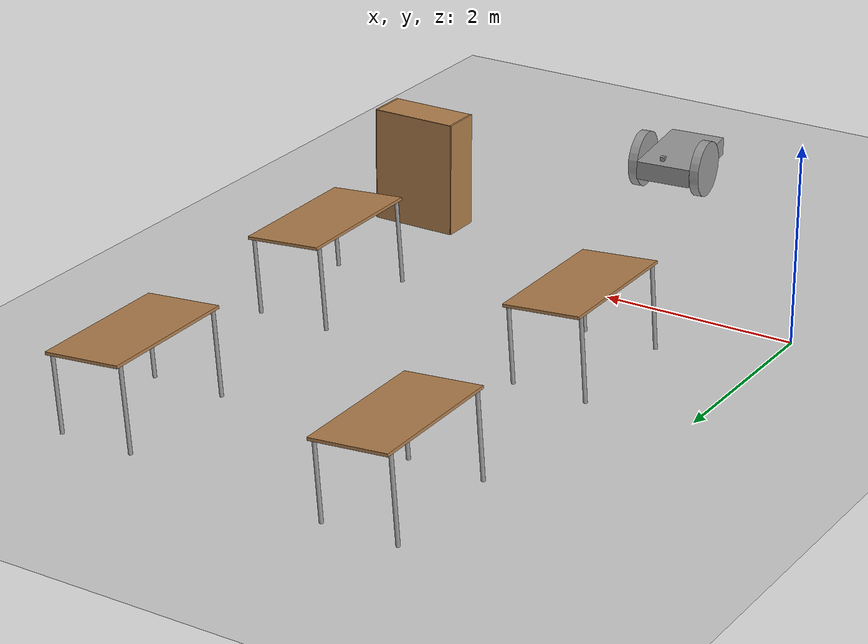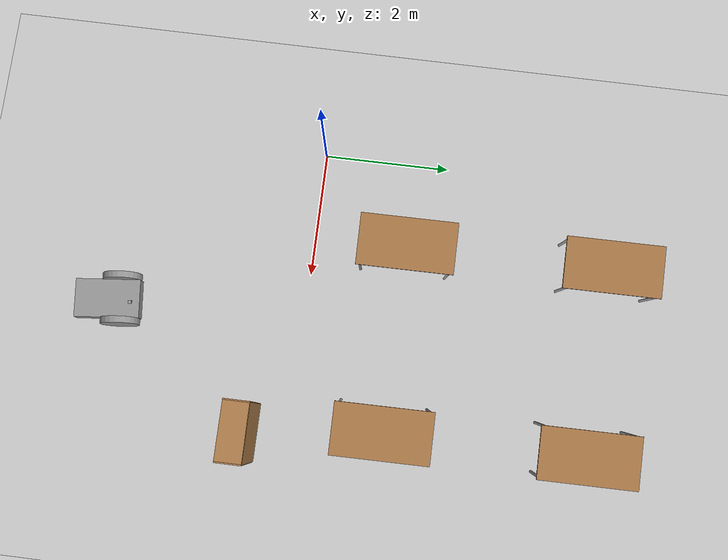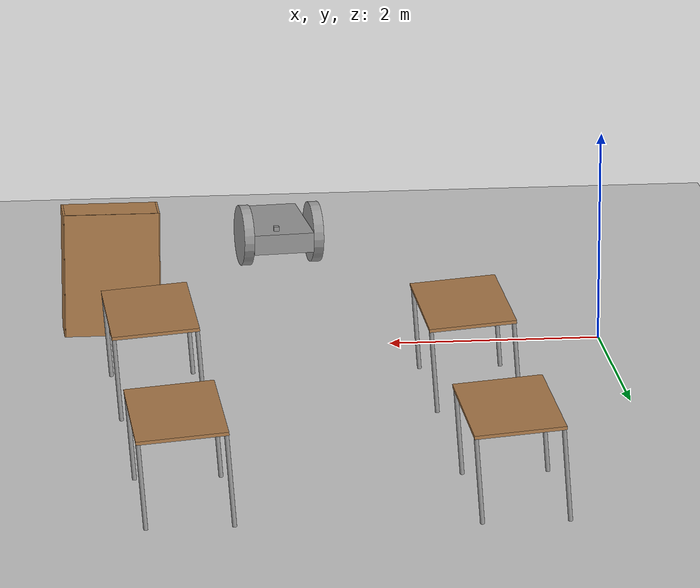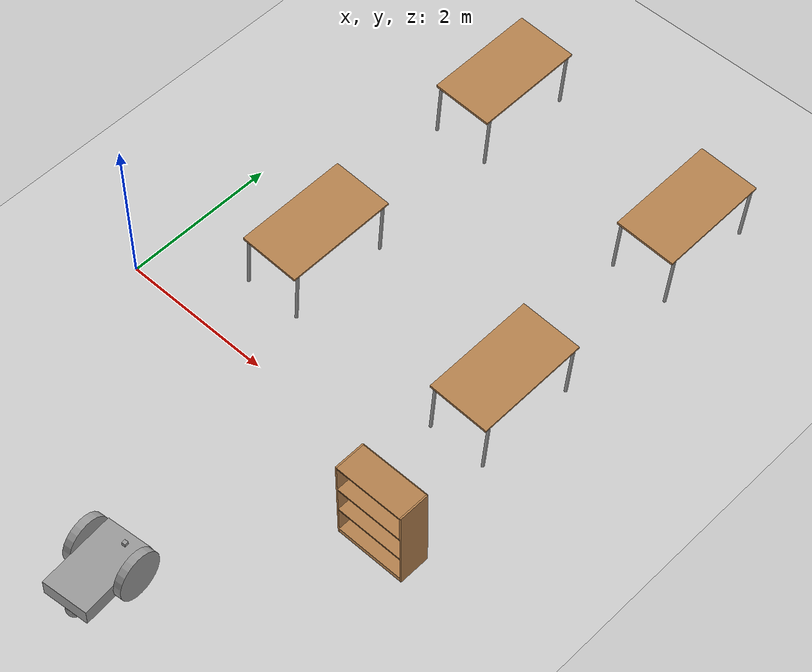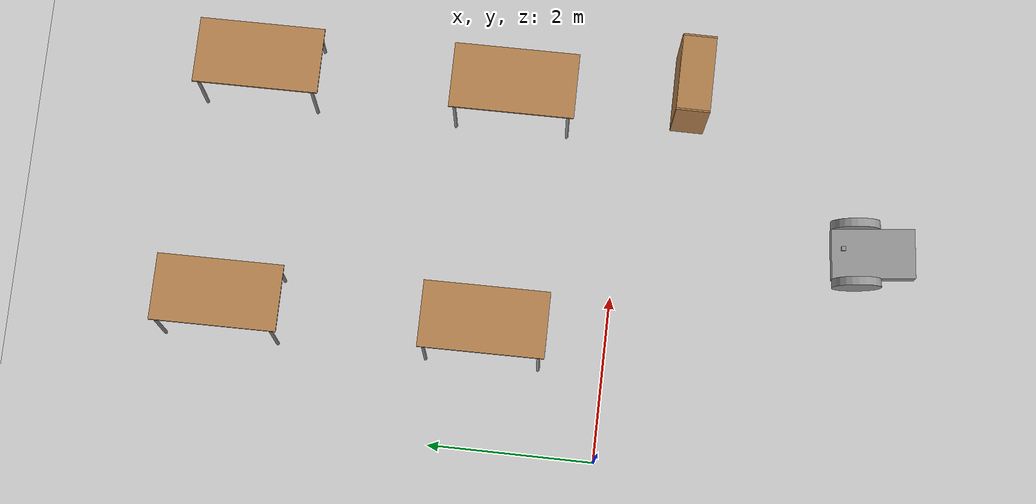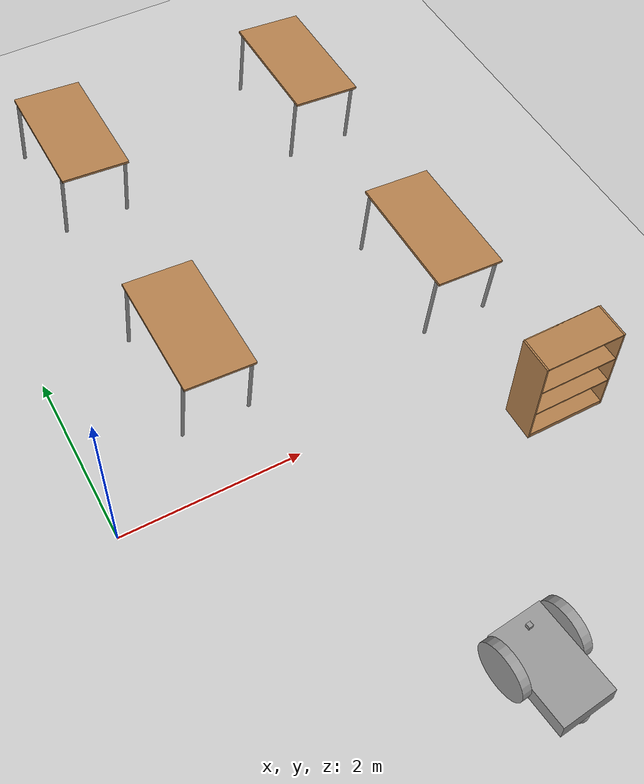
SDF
<sdf version="1.7">
 <world name="default">
  <model name="ground_plane">
   <static>1</static>
   <link name="link">
    <collision name="collision">
     <geometry><plane><normal>0 0 1</normal><size>100 100</size></plane></geometry>
     <surface>
      <contact><collide_bitmask>65535</collide_bitmask></contact>
      <friction><ode><mu>100</mu><mu2>50</mu2></ode></friction>
     </surface>
    </collision>
    <visual name="visual">
     <cast_shadows>0</cast_shadows>
     <geometry><plane><normal>0 0 1</normal><size>100 100</size></plane></geometry>
     <material>
      <script><uri>file://media/materials/scripts/gazebo.material</uri><name>Gazebo/Grey</name></script>
     </material>
    </visual>
   </link>
  </model>
  <model name="table">
   <static>1</static>
   <link name="link">
    <collision name="surface">
     <pose>0 0 1 0 -0 0</pose>
     <geometry><box><size>1.5 0.8 0.03</size></box></geometry>
     <surface><friction><ode><mu>0.6</mu><mu2>0.6</mu2></ode></friction></surface>
    </collision>
    <visual name="visual1">
     <pose>0 0 1 0 -0 0</pose>
     <geometry><box><size>1.5 0.8 0.03</size></box></geometry>
     <material>
      <script><uri>file://media/materials/scripts/gazebo.material</uri><name>Gazebo/Wood</name></script>
     </material>
    </visual>
    <collision name="front_left_leg">
     <pose>0.68 0.38 0.5 0 -0 0</pose>
     <geometry><cylinder><radius>0.02</radius><length>1</length></cylinder></geometry>
    </collision>
    <visual name="front_left_leg">
     <pose>0.68 0.38 0.5 0 -0 0</pose>
     <geometry><cylinder><radius>0.02</radius><length>1</length></cylinder></geometry>
     <material>
      <script><uri>file://media/materials/scripts/gazebo.material</uri><name>Gazebo/Grey</name></script>
     </material>
    </visual>
    <collision name="front_right_leg">
     <pose>0.68 -0.38 0.5 0 -0 0</pose>
     <geometry><cylinder><radius>0.02</radius><length>1</length></cylinder></geometry>
    </collision>
    <visual name="front_right_leg">
     <pose>0.68 -0.38 0.5 0 -0 0</pose>
     <geometry><cylinder><radius>0.02</radius><length>1</length></cylinder></geometry>
     <material>
      <script><uri>file://media/materials/scripts/gazebo.material</uri><name>Gazebo/Grey</name></script>
     </material>
    </visual>
    <collision name="back_right_leg">
     <pose>-0.68 -0.38 0.5 0 -0 0</pose>
     <geometry><cylinder><radius>0.02</radius><length>1</length></cylinder></geometry>
    </collision>
    <visual name="back_right_leg">
     <pose>-0.68 -0.38 0.5 0 -0 0</pose>
     <geometry><cylinder><radius>0.02</radius><length>1</length></cylinder></geometry>
     <material>
      <script><uri>file://media/materials/scripts/gazebo.material</uri><name>Gazebo/Grey</name></script>
     </material>
    </visual>
    <collision name="back_left_leg">
     <pose>-0.68 0.38 0.5 0 -0 0</pose>
     <geometry><cylinder><radius>0.02</radius><length>1</length></cylinder></geometry>
    </collision>
    <visual name="back_left_leg">
     <pose>-0.68 0.38 0.5 0 -0 0</pose>
     <geometry><cylinder><radius>0.02</radius><length>1</length></cylinder></geometry>
     <material>
      <script><uri>file://media/materials/scripts/gazebo.material</uri><name>Gazebo/Grey</name></script>
     </material>
    </visual>
   </link>
   <pose>4.2736 4.48138 -0.182108 -0.078341 0.000521 -1.56416</pose>
  </model>
  <model name="table_clone">
   <static>1</static>
   <link name="link">
    <collision name="surface">
     <pose>0 0 1 0 -0 0</pose>
     <geometry><box><size>1.5 0.8 0.03</size></box></geometry>
     <surface><friction><ode><mu>0.6</mu><mu2>0.6</mu2></ode></friction></surface>
    </collision>
    <visual name="visual1">
     <pose>0 0 1 0 -0 0</pose>
     <geometry><box><size>1.5 0.8 0.03</size></box></geometry>
     <material>
      <script><uri>file://media/materials/scripts/gazebo.material</uri><name>Gazebo/Wood</name></script>
     </material>
    </visual>
    <collision name="front_left_leg">
     <pose>0.68 0.38 0.5 0 -0 0</pose>
     <geometry><cylinder><radius>0.02</radius><length>1</length></cylinder></geometry>
    </collision>
    <visual name="front_left_leg">
     <pose>0.68 0.38 0.5 0 -0 0</pose>
     <geometry><cylinder><radius>0.02</radius><length>1</length></cylinder></geometry>
     <material>
      <script><uri>file://media/materials/scripts/gazebo.material</uri><name>Gazebo/Grey</name></script>
     </material>
    </visual>
    <collision name="front_right_leg">
     <pose>0.68 -0.38 0.5 0 -0 0</pose>
     <geometry><cylinder><radius>0.02</radius><length>1</length></cylinder></geometry>
    </collision>
    <visual name="front_right_leg">
     <pose>0.68 -0.38 0.5 0 -0 0</pose>
     <geometry><cylinder><radius>0.02</radius><length>1</length></cylinder></geometry>
     <material>
      <script><uri>file://media/materials/scripts/gazebo.material</uri><name>Gazebo/Grey</name></script>
     </material>
    </visual>
    <collision name="back_right_leg">
     <pose>-0.68 -0.38 0.5 0 -0 0</pose>
     <geometry><cylinder><radius>0.02</radius><length>1</length></cylinder></geometry>
    </collision>
    <visual name="back_right_leg">
     <pose>-0.68 -0.38 0.5 0 -0 0</pose>
     <geometry><cylinder><radius>0.02</radius><length>1</length></cylinder></geometry>
     <material>
      <script><uri>file://media/materials/scripts/gazebo.material</uri><name>Gazebo/Grey</name></script>
     </material>
    </visual>
    <collision name="back_left_leg">
     <pose>-0.68 0.38 0.5 0 -0 0</pose>
     <geometry><cylinder><radius>0.02</radius><length>1</length></cylinder></geometry>
    </collision>
    <visual name="back_left_leg">
     <pose>-0.68 0.38 0.5 0 -0 0</pose>
     <geometry><cylinder><radius>0.02</radius><length>1</length></cylinder></geometry>
     <material>
      <script><uri>file://media/materials/scripts/gazebo.material</uri><name>Gazebo/Grey</name></script>
     </material>
    </visual>
   </link>
   <pose>1.39226 4.61245 -0.182108 -0.078341 0.000521 -1.56416</pose>
  </model>
  <model name="table_clone_0">
   <static>1</static>
   <link name="link">
    <collision name="surface">
     <pose>0 0 1 0 -0 0</pose>
     <geometry><box><size>1.5 0.8 0.03</size></box></geometry>
     <surface><friction><ode><mu>0.6</mu><mu2>0.6</mu2></ode></friction></surface>
    </collision>
    <visual name="visual1">
     <pose>0 0 1 0 -0 0</pose>
     <geometry><box><size>1.5 0.8 0.03</size></box></geometry>
     <material>
      <script><uri>file://media/materials/scripts/gazebo.material</uri><name>Gazebo/Wood</name></script>
     </material>
    </visual>
    <collision name="front_left_leg">
     <pose>0.68 0.38 0.5 0 -0 0</pose>
     <geometry><cylinder><radius>0.02</radius><length>1</length></cylinder></geometry>
    </collision>
    <visual name="front_left_leg">
     <pose>0.68 0.38 0.5 0 -0 0</pose>
     <geometry><cylinder><radius>0.02</radius><length>1</length></cylinder></geometry>
     <material>
      <script><uri>file://media/materials/scripts/gazebo.material</uri><name>Gazebo/Grey</name></script>
     </material>
    </visual>
    <collision name="front_right_leg">
     <pose>0.68 -0.38 0.5 0 -0 0</pose>
     <geometry><cylinder><radius>0.02</radius><length>1</length></cylinder></geometry>
    </collision>
    <visual name="front_right_leg">
     <pose>0.68 -0.38 0.5 0 -0 0</pose>
     <geometry><cylinder><radius>0.02</radius><length>1</length></cylinder></geometry>
     <material>
      <script><uri>file://media/materials/scripts/gazebo.material</uri><name>Gazebo/Grey</name></script>
     </material>
    </visual>
    <collision name="back_right_leg">
     <pose>-0.68 -0.38 0.5 0 -0 0</pose>
     <geometry><cylinder><radius>0.02</radius><length>1</length></cylinder></geometry>
    </collision>
    <visual name="back_right_leg">
     <pose>-0.68 -0.38 0.5 0 -0 0</pose>
     <geometry><cylinder><radius>0.02</radius><length>1</length></cylinder></geometry>
     <material>
      <script><uri>file://media/materials/scripts/gazebo.material</uri><name>Gazebo/Grey</name></script>
     </material>
    </visual>
    <collision name="back_left_leg">
     <pose>-0.68 0.38 0.5 0 -0 0</pose>
     <geometry><cylinder><radius>0.02</radius><length>1</length></cylinder></geometry>
    </collision>
    <visual name="back_left_leg">
     <pose>-0.68 0.38 0.5 0 -0 0</pose>
     <geometry><cylinder><radius>0.02</radius><length>1</length></cylinder></geometry>
     <material>
      <script><uri>file://media/materials/scripts/gazebo.material</uri><name>Gazebo/Grey</name></script>
     </material>
    </visual>
   </link>
   <pose>1.40873 1.45807 -0.182108 -0.078341 0.000521 -1.56416</pose>
  </model>
  <model name="table_clone_1">
   <static>1</static>
   <link name="link">
    <collision name="surface">
     <pose>0 0 1 0 -0 0</pose>
     <geometry><box><size>1.5 0.8 0.03</size></box></geometry>
     <surface><friction><ode><mu>0.6</mu><mu2>0.6</mu2></ode></friction></surface>
    </collision>
    <visual name="visual1">
     <pose>0 0 1 0 -0 0</pose>
     <geometry><box><size>1.5 0.8 0.03</size></box></geometry>
     <material>
      <script><uri>file://media/materials/scripts/gazebo.material</uri><name>Gazebo/Wood</name></script>
     </material>
    </visual>
    <collision name="front_left_leg">
     <pose>0.68 0.38 0.5 0 -0 0</pose>
     <geometry><cylinder><radius>0.02</radius><length>1</length></cylinder></geometry>
    </collision>
    <visual name="front_left_leg">
     <pose>0.68 0.38 0.5 0 -0 0</pose>
     <geometry><cylinder><radius>0.02</radius><length>1</length></cylinder></geometry>
     <material>
      <script><uri>file://media/materials/scripts/gazebo.material</uri><name>Gazebo/Grey</name></script>
     </material>
    </visual>
    <collision name="front_right_leg">
     <pose>0.68 -0.38 0.5 0 -0 0</pose>
     <geometry><cylinder><radius>0.02</radius><length>1</length></cylinder></geometry>
    </collision>
    <visual name="front_right_leg">
     <pose>0.68 -0.38 0.5 0 -0 0</pose>
     <geometry><cylinder><radius>0.02</radius><length>1</length></cylinder></geometry>
     <material>
      <script><uri>file://media/materials/scripts/gazebo.material</uri><name>Gazebo/Grey</name></script>
     </material>
    </visual>
    <collision name="back_right_leg">
     <pose>-0.68 -0.38 0.5 0 -0 0</pose>
     <geometry><cylinder><radius>0.02</radius><length>1</length></cylinder></geometry>
    </collision>
    <visual name="back_right_leg">
     <pose>-0.68 -0.38 0.5 0 -0 0</pose>
     <geometry><cylinder><radius>0.02</radius><length>1</length></cylinder></geometry>
     <material>
      <script><uri>file://media/materials/scripts/gazebo.material</uri><name>Gazebo/Grey</name></script>
     </material>
    </visual>
    <collision name="back_left_leg">
     <pose>-0.68 0.38 0.5 0 -0 0</pose>
     <geometry><cylinder><radius>0.02</radius><length>1</length></cylinder></geometry>
    </collision>
    <visual name="back_left_leg">
     <pose>-0.68 0.38 0.5 0 -0 0</pose>
     <geometry><cylinder><radius>0.02</radius><length>1</length></cylinder></geometry>
     <material>
      <script><uri>file://media/materials/scripts/gazebo.material</uri><name>Gazebo/Grey</name></script>
     </material>
    </visual>
   </link>
   <pose>4.29106 1.41438 -0.182108 -0.078341 0.000521 -1.56416</pose>
  </model>
  <model name="bookshelf_0">
   <static>1</static>
   <link name="link">
    <inertial><mass>1</mass></inertial>
    <collision name="back">
     <pose>0 0.005 0.6 0 -0 0</pose>
     <geometry><box><size>0.9 0.01 1.2</size></box></geometry>
    </collision>
    <visual name="visual1">
     <pose>0 0.005 0.6 0 -0 0</pose>
     <geometry><box><size>0.9 0.01 1.2</size></box></geometry>
     <material>
      <script><uri>file://media/materials/scripts/gazebo.material</uri><name>Gazebo/Wood</name></script>
     </material>
    </visual>
    <collision name="left_side">
     <pose>0.45 -0.195 0.6 0 -0 0</pose>
     <geometry><box><size>0.02 0.4 1.2</size></box></geometry>
    </collision>
    <visual name="visual2">
     <pose>0.45 -0.195 0.6 0 -0 0</pose>
     <geometry><box><size>0.02 0.4 1.2</size></box></geometry>
     <material>
      <script><uri>file://media/materials/scripts/gazebo.material</uri><name>Gazebo/Wood</name></script>
     </material>
    </visual>
    <collision name="right_side">
     <pose>-0.45 -0.195 0.6 0 -0 0</pose>
     <geometry><box><size>0.02 0.4 1.2</size></box></geometry>
    </collision>
    <visual name="visual3">
     <pose>-0.45 -0.195 0.6 0 -0 0</pose>
     <geometry><box><size>0.02 0.4 1.2</size></box></geometry>
     <material>
      <script><uri>file://media/materials/scripts/gazebo.material</uri><name>Gazebo/Wood</name></script>
     </material>
    </visual>
    <collision name="bottom">
     <pose>0 -0.195 0.03 0 -0 0</pose>
     <geometry><box><size>0.88 0.4 0.06</size></box></geometry>
    </collision>
    <visual name="visual4">
     <pose>0 -0.195 0.03 0 -0 0</pose>
     <geometry><box><size>0.88 0.4 0.06</size></box></geometry>
     <material>
      <script><uri>file://media/materials/scripts/gazebo.material</uri><name>Gazebo/Wood</name></script>
     </material>
    </visual>
    <collision name="top">
     <pose>0 -0.195 1.19 0 -0 0</pose>
     <geometry><box><size>0.88 0.4 0.02</size></box></geometry>
    </collision>
    <visual name="visual5">
     <pose>0 -0.195 1.19 0 -0 0</pose>
     <geometry><box><size>0.88 0.4 0.02</size></box></geometry>
     <material>
      <script><uri>file://media/materials/scripts/gazebo.material</uri><name>Gazebo/Wood</name></script>
     </material>
    </visual>
    <collision name="low_shelf">
     <pose>0 -0.195 0.43 0 -0 0</pose>
     <geometry><box><size>0.88 0.4 0.02</size></box></geometry>
    </collision>
    <visual name="visual6">
     <pose>0 -0.195 0.43 0 -0 0</pose>
     <geometry><box><size>0.88 0.4 0.02</size></box></geometry>
     <material>
      <script><uri>file://media/materials/scripts/gazebo.material</uri><name>Gazebo/Wood</name></script>
     </material>
    </visual>
    <collision name="high_shelf">
     <pose>0 -0.195 0.8 0 -0 0</pose>
     <geometry><box><size>0.88 0.4 0.02</size></box></geometry>
    </collision>
    <visual name="visual7">
     <pose>0 -0.195 0.8 0 -0 0</pose>
     <geometry><box><size>0.88 0.4 0.02</size></box></geometry>
     <material>
      <script><uri>file://media/materials/scripts/gazebo.material</uri><name>Gazebo/Wood</name></script>
     </material>
    </visual>
   </link>
   <pose>4.60051 -0.525793 0 0 -0 0</pose>
  </model>
  <model name="mobile_robot">
   <link name="link">
    <inertial>
     <mass>1</mass>
     <inertia>
      <ixx>0.166667</ixx>
      <ixy>0</ixy>
      <ixz>0</ixz>
      <iyy>0.166667</iyy>
      <iyz>0</iyz>
      <izz>0.166667</izz>
     </inertia>
    </inertial>
    <visual name="visual">
     <geometry><box><size>1 0.6 0.2</size></box></geometry>
     <material>
      <script><name>Gazebo/Grey</name><uri>file://media/materials/scripts/gazebo.material</uri></script>
      <shader type="vertex"><normal_map>__default__</normal_map></shader>
      <ambient>0.3 0.3 0.3 1</ambient>
      <diffuse>0.7 0.7 0.7 1</diffuse>
      <specular>0.01 0.01 0.01 1</specular>
      <emissive>0 0 0 1</emissive>
     </material>
    </visual>
    <collision name="collision">
     <geometry><box><size>1 0.6 0.2</size></box></geometry>
     <surface>
      <friction>
       <ode><mu>1</mu><mu2>1</mu2><fdir1>0 0 0</fdir1><slip1>0</slip1><slip2>0</slip2></ode>
       <torsional>
        <coefficient>1</coefficient>
        <patch_radius>0</patch_radius>
        <surface_radius>0</surface_radius>
        <use_patch_radius>1</use_patch_radius>
        <ode><slip>0</slip></ode>
       </torsional>
      </friction>
      <bounce><restitution_coefficient>0</restitution_coefficient><threshold>1e+06</threshold></bounce>
      <contact>
       <collide_without_contact>0</collide_without_contact>
       <collide_without_contact_bitmask>1</collide_without_contact_bitmask>
       <collide_bitmask>1</collide_bitmask>
       <ode>
        <soft_cfm>0</soft_cfm>
        <soft_erp>0.2</soft_erp>
        <kp>1e+13</kp>
        <kd>1</kd>
        <max_vel>0.01</max_vel>
        <min_depth>0</min_depth>
       </ode>
       <bullet>
        <split_impulse>1</split_impulse>
        <split_impulse_penetration_threshold>-0.01</split_impulse_penetration_threshold>
        <soft_cfm>0</soft_cfm>
        <soft_erp>0.2</soft_erp>
        <kp>1e+13</kp>
        <kd>1</kd>
       </bullet>
      </contact>
     </surface>
    </collision>
   </link>
   <link name="link_1">
    <inertial>
     <mass>1</mass>
     <inertia><ixx>0.145833</ixx><ixy>0</ixy><ixz>0</ixz><iyy>0.145833</iyy><iyz>0</iyz><izz>0.125</izz></inertia>
    </inertial>
    <pose>0.2 -0.350027 0.02 1.5707 -0 0</pose>
    <visual name="visual">
     <geometry><cylinder><radius>0.3</radius><length>0.1</length></cylinder></geometry>
     <material>
      <lighting>1</lighting>
      <script><uri>file://media/materials/scripts/gazebo.material</uri><name>Gazebo/Grey</name></script>
      <shader type="vertex"><normal_map>__default__</normal_map></shader>
      <ambient>0.3 0.3 0.3 1</ambient>
      <diffuse>0.7 0.7 0.7 1</diffuse>
      <specular>0.01 0.01 0.01 1</specular>
      <emissive>0 0 0 1</emissive>
     </material>
    </visual>
    <collision name="collision">
     <geometry><cylinder><radius>0.3</radius><length>0.1</length></cylinder></geometry>
     <surface>
      <friction>
       <ode><mu>1</mu><mu2>1</mu2><fdir1>0 0 0</fdir1><slip1>0</slip1><slip2>0</slip2></ode>
       <torsional>
        <coefficient>1</coefficient>
        <patch_radius>0</patch_radius>
        <surface_radius>0</surface_radius>
        <use_patch_radius>1</use_patch_radius>
        <ode><slip>0</slip></ode>
       </torsional>
      </friction>
      <bounce><restitution_coefficient>0</restitution_coefficient><threshold>1e+06</threshold></bounce>
      <contact>
       <collide_without_contact>0</collide_without_contact>
       <collide_without_contact_bitmask>1</collide_without_contact_bitmask>
       <collide_bitmask>1</collide_bitmask>
       <ode>
        <soft_cfm>0</soft_cfm>
        <soft_erp>0.2</soft_erp>
        <kp>1e+13</kp>
        <kd>1</kd>
        <max_vel>0.01</max_vel>
        <min_depth>0</min_depth>
       </ode>
       <bullet>
        <split_impulse>1</split_impulse>
        <split_impulse_penetration_threshold>-0.01</split_impulse_penetration_threshold>
        <soft_cfm>0</soft_cfm>
        <soft_erp>0.2</soft_erp>
        <kp>1e+13</kp>
        <kd>1</kd>
       </bullet>
      </contact>
     </surface>
    </collision>
   </link>
   <link name="link_1_clone">
    <inertial>
     <mass>1</mass>
     <inertia><ixx>0.145833</ixx><ixy>0</ixy><ixz>0</ixz><iyy>0.145833</iyy><iyz>0</iyz><izz>0.125</izz></inertia>
    </inertial>
    <pose>0.2 0.35003 0.019997 1.57069 -0 0</pose>
    <visual name="visual">
     <geometry><cylinder><radius>0.3</radius><length>0.1</length></cylinder></geometry>
     <material>
      <lighting>1</lighting>
      <script><uri>file://media/materials/scripts/gazebo.material</uri><name>Gazebo/Grey</name></script>
      <shader type="vertex"><normal_map>__default__</normal_map></shader>
      <ambient>0.3 0.3 0.3 1</ambient>
      <diffuse>0.7 0.7 0.7 1</diffuse>
      <specular>0.01 0.01 0.01 1</specular>
      <emissive>0 0 0 1</emissive>
     </material>
    </visual>
    <collision name="collision">
     <geometry><cylinder><radius>0.3</radius><length>0.1</length></cylinder></geometry>
     <surface>
      <friction>
       <ode><mu>1</mu><mu2>1</mu2><fdir1>0 0 0</fdir1><slip1>0</slip1><slip2>0</slip2></ode>
       <torsional>
        <coefficient>1</coefficient>
        <patch_radius>0</patch_radius>
        <surface_radius>0</surface_radius>
        <use_patch_radius>1</use_patch_radius>
        <ode><slip>0</slip></ode>
       </torsional>
      </friction>
      <bounce><restitution_coefficient>0</restitution_coefficient><threshold>1e+06</threshold></bounce>
      <contact>
       <collide_without_contact>0</collide_without_contact>
       <collide_without_contact_bitmask>1</collide_without_contact_bitmask>
       <collide_bitmask>1</collide_bitmask>
       <ode>
        <soft_cfm>0</soft_cfm>
        <soft_erp>0.2</soft_erp>
        <kp>1e+13</kp>
        <kd>1</kd>
        <max_vel>0.01</max_vel>
        <min_depth>0</min_depth>
       </ode>
       <bullet>
        <split_impulse>1</split_impulse>
        <split_impulse_penetration_threshold>-0.01</split_impulse_penetration_threshold>
        <soft_cfm>0</soft_cfm>
        <soft_erp>0.2</soft_erp>
        <kp>1e+13</kp>
        <kd>1</kd>
       </bullet>
      </contact>
     </surface>
    </collision>
   </link>
   <link name="link_2">
    <inertial>
     <mass>1</mass>
     <inertia><ixx>0.1</ixx><ixy>0</ixy><ixz>0</ixz><iyy>0.1</iyy><iyz>0</iyz><izz>0.1</izz></inertia>
    </inertial>
    <pose>-0.4 -0.020003 -0.2 -1e-05 -0 0</pose>
    <visual name="visual">
     <geometry><sphere><radius>0.1</radius></sphere></geometry>
     <material>
      <lighting>1</lighting>
      <script><uri>file://media/materials/scripts/gazebo.material</uri><name>Gazebo/Grey</name></script>
      <shader type="vertex"><normal_map>__default__</normal_map></shader>
      <ambient>0.3 0.3 0.3 1</ambient>
      <diffuse>0.7 0.7 0.7 1</diffuse>
      <specular>0.01 0.01 0.01 1</specular>
      <emissive>0 0 0 1</emissive>
     </material>
    </visual>
    <collision name="collision">
     <geometry><sphere><radius>0.1</radius></sphere></geometry>
     <surface>
      <friction>
       <ode><mu>1</mu><mu2>1</mu2><fdir1>0 0 0</fdir1><slip1>0</slip1><slip2>0</slip2></ode>
       <torsional>
        <coefficient>1</coefficient>
        <patch_radius>0</patch_radius>
        <surface_radius>0</surface_radius>
        <use_patch_radius>1</use_patch_radius>
        <ode><slip>0</slip></ode>
       </torsional>
      </friction>
      <bounce><restitution_coefficient>0</restitution_coefficient><threshold>1e+06</threshold></bounce>
      <contact>
       <collide_without_contact>0</collide_without_contact>
       <collide_without_contact_bitmask>1</collide_without_contact_bitmask>
       <collide_bitmask>1</collide_bitmask>
       <ode>
        <soft_cfm>0</soft_cfm>
        <soft_erp>0.2</soft_erp>
        <kp>1e+13</kp>
        <kd>1</kd>
        <max_vel>0.01</max_vel>
        <min_depth>0</min_depth>
       </ode>
       <bullet>
        <split_impulse>1</split_impulse>
        <split_impulse_penetration_threshold>-0.01</split_impulse_penetration_threshold>
        <soft_cfm>0</soft_cfm>
        <soft_erp>0.2</soft_erp>
        <kp>1e+13</kp>
        <kd>1</kd>
       </bullet>
      </contact>
     </surface>
    </collision>
   </link>
   <link name="link_3">
    <inertial>
     <mass>1</mass>
     <inertia>
      <ixx>0.166667</ixx>
      <ixy>0</ixy>
      <ixz>0</ixz>
      <iyy>0.166667</iyy>
      <iyz>0</iyz>
      <izz>0.166667</izz>
     </inertia>
    </inertial>
    <pose>0.360001 -0.057499 0.12 -1e-05 -0 0</pose>
    <visual name="visual">
     <geometry><box><size>0.05 0.05 0.05</size></box></geometry>
     <material>
      <lighting>1</lighting>
      <script><uri>file://media/materials/scripts/gazebo.material</uri><name>Gazebo/Grey</name></script>
      <shader type="vertex"><normal_map>__default__</normal_map></shader>
      <ambient>0.3 0.3 0.3 1</ambient>
      <diffuse>0.7 0.7 0.7 1</diffuse>
      <specular>0.01 0.01 0.01 1</specular>
      <emissive>0 0 0 1</emissive>
     </material>
    </visual>
    <collision name="collision">
     <geometry><box><size>0.05 0.05 0.05</size></box></geometry>
     <surface>
      <friction>
       <ode><mu>1</mu><mu2>1</mu2><fdir1>0 0 0</fdir1><slip1>0</slip1><slip2>0</slip2></ode>
       <torsional>
        <coefficient>1</coefficient>
        <patch_radius>0</patch_radius>
        <surface_radius>0</surface_radius>
        <use_patch_radius>1</use_patch_radius>
        <ode><slip>0</slip></ode>
       </torsional>
      </friction>
      <bounce><restitution_coefficient>0</restitution_coefficient><threshold>1e+06</threshold></bounce>
      <contact>
       <collide_without_contact>0</collide_without_contact>
       <collide_without_contact_bitmask>1</collide_without_contact_bitmask>
       <collide_bitmask>1</collide_bitmask>
       <ode>
        <soft_cfm>0</soft_cfm>
        <soft_erp>0.2</soft_erp>
        <kp>1e+13</kp>
        <kd>1</kd>
        <max_vel>0.01</max_vel>
        <min_depth>0</min_depth>
       </ode>
       <bullet>
        <split_impulse>1</split_impulse>
        <split_impulse_penetration_threshold>-0.01</split_impulse_penetration_threshold>
        <soft_cfm>0</soft_cfm>
        <soft_erp>0.2</soft_erp>
        <kp>1e+13</kp>
        <kd>1</kd>
       </bullet>
      </contact>
     </surface>
    </collision>
   </link>
   <joint name="link_JOINT_1" type="revolute">
    <parent>link</parent>
    <child>link_1</child>
    <axis>
     <xyz>0 0 -1</xyz>
     <limit>
      <lower>-1.79769e+308</lower>
      <upper>1.79769e+308</upper>
      <effort>-1</effort>
      <velocity>-1</velocity>
     </limit>
     <dynamics>
      <spring_reference>0</spring_reference>
      <spring_stiffness>0</spring_stiffness>
      <damping>0</damping>
      <friction>0</friction>
     </dynamics>
    </axis>
    <physics>
     <ode><limit><cfm>0</cfm><erp>0.2</erp></limit><suspension><cfm>0</cfm><erp>0.2</erp></suspension></ode>
    </physics>
   </joint>
   <joint name="link_JOINT_2" type="revolute">
    <parent>link</parent>
    <child>link_1_clone</child>
    <axis>
     <xyz>0 0 1</xyz>
     <limit>
      <lower>-1.79769e+308</lower>
      <upper>1.79769e+308</upper>
      <effort>-1</effort>
      <velocity>-1</velocity>
     </limit>
     <dynamics>
      <spring_reference>0</spring_reference>
      <spring_stiffness>0</spring_stiffness>
      <damping>0</damping>
     </dynamics>
    </axis>
    <physics>
     <ode><limit><cfm>0</cfm><erp>0.2</erp></limit><suspension><cfm>0</cfm><erp>0.2</erp></suspension></ode>
    </physics>
   </joint>
   <joint name="link_JOINT_3" type="ball">
    <parent>link</parent>
    <child>link_2</child>
    <physics>
     <ode><limit><cfm>0</cfm><erp>0.2</erp></limit><suspension><cfm>0</cfm><erp>0.2</erp></suspension></ode>
    </physics>
   </joint>
   <joint name="link_JOINT_4" type="fixed">
    <parent>link</parent>
    <child>link_3</child>
    <physics>
     <ode><limit><cfm>0</cfm><erp>0.2</erp></limit><suspension><cfm>0</cfm><erp>0.2</erp></suspension></ode>
    </physics>
   </joint>
   <static>0</static>
   <pose>2.81878 -3.07687 0.286642 5e-06 0.033128 1.67121</pose>
  </model>
 </world>
</sdf>
